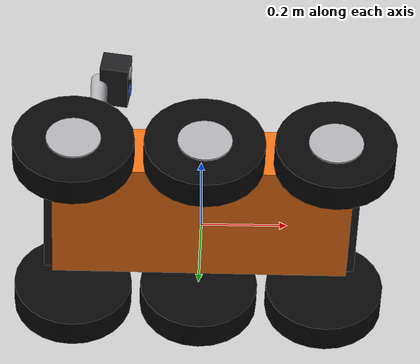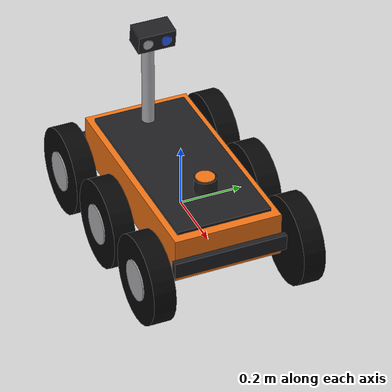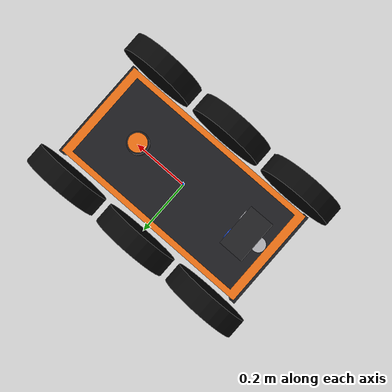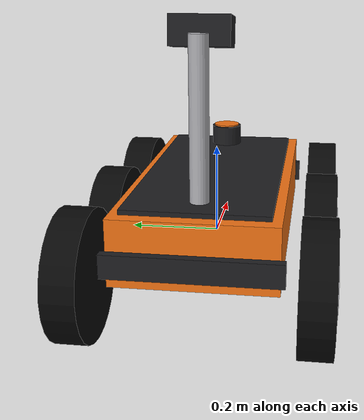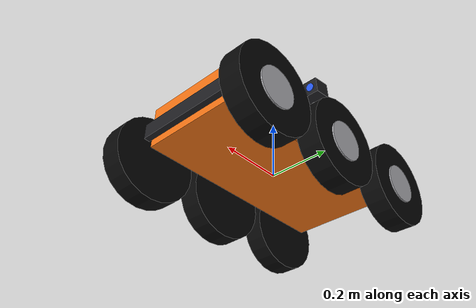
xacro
<?xml version="1.0"?>
<robot name="rover" xmlns:xacro="http://www.ros.org/wiki/xacro">
  <xacro:arg name="ns" default="r1"/>
  <xacro:arg name="sensors" default="true"/>
  <xacro:property name="ns" value="$(arg ns)"/>

  <xacro:property name="wheel_r" value="0.14"/>
  <xacro:property name="wheel_w" value="0.07"/>
  <xacro:property name="track" value="0.48"/>       <!-- wheel centre to wheel centre, across -->
  <xacro:property name="axle_x" value="0.30"/>      <!-- front/rear axles; middle at 0 -->
  <xacro:property name="chassis_l" value="0.70"/>
  <xacro:property name="chassis_w" value="0.34"/>
  <xacro:property name="chassis_h" value="0.14"/>
  <xacro:property name="chassis_z" value="0.07"/>   <!-- centre above the axles: 14 cm clearance -->
  <xacro:property name="mast_x" value="-0.25"/>
  <xacro:property name="head_z" value="0.48"/>      <!-- camera above the axles: 0.62 m above ground -->

  <material name="body"><color rgba="0.95 0.45 0.08 1"/></material>
  <material name="dark"><color rgba="0.12 0.12 0.13 1"/></material>
  <material name="rubber"><color rgba="0.03 0.03 0.03 1"/></material>
  <material name="metal"><color rgba="0.7 0.7 0.72 1"/></material>
  <material name="eye"><color rgba="0.15 0.35 0.95 1"/></material>

  <xacro:macro name="box_inertia" params="m x y z *origin">
    <inertial><xacro:insert_block name="origin"/><mass value="${m}"/>
      <inertia ixx="${m*(y*y+z*z)/12}" iyy="${m*(x*x+z*z)/12}" izz="${m*(x*x+y*y)/12}" ixy="0" ixz="0" iyz="0"/>
    </inertial>
  </xacro:macro>

  <!-- ===== chassis ===== -->
  <link name="base_link">
    <visual><origin xyz="0 0 ${chassis_z}"/><geometry><box size="${chassis_l} ${chassis_w} ${chassis_h}"/></geometry><material name="body"/></visual>
    <visual><origin xyz="0 0 ${chassis_z + chassis_h/2 + 0.005}"/><geometry><box size="${chassis_l - 0.06} ${chassis_w - 0.04} 0.01"/></geometry><material name="dark"/></visual>
    <!-- bumpers -->
    <visual><origin xyz="${chassis_l/2 + 0.01} 0 ${chassis_z - 0.02}"/><geometry><box size="0.02 ${chassis_w + 0.02} 0.05"/></geometry><material name="dark"/></visual>
    <visual><origin xyz="${-chassis_l/2 - 0.01} 0 ${chassis_z - 0.02}"/><geometry><box size="0.02 ${chassis_w + 0.02} 0.05"/></geometry><material name="dark"/></visual>
    <collision><origin xyz="0 0 ${chassis_z}"/><geometry><box size="${chassis_l} ${chassis_w} ${chassis_h}"/></geometry></collision>
    <xacro:box_inertia m="9.0" x="${chassis_l}" y="${chassis_w}" z="${chassis_h}"><origin xyz="0 0 ${chassis_z - 0.02}"/></xacro:box_inertia>
  </link>
  <gazebo reference="base_link"><mu1>0.4</mu1><mu2>0.4</mu2></gazebo>

  <xacro:macro name="wheel" params="name x side">
    <link name="${name}_wheel">
      <visual><origin rpy="${pi/2} 0 0"/><geometry><cylinder radius="${wheel_r}" length="${wheel_w}"/></geometry><material name="rubber"/></visual>
      <visual><origin xyz="0 ${side*(wheel_w/2 + 0.002)} 0" rpy="${pi/2} 0 0"/><geometry><cylinder radius="${wheel_r*0.45}" length="0.004"/></geometry><material name="metal"/></visual>
      <collision><origin rpy="${pi/2} 0 0"/><geometry><cylinder radius="${wheel_r}" length="${wheel_w}"/></geometry></collision>
      <inertial><mass value="0.7"/>
        <inertia ixx="${0.7*(3*wheel_r*wheel_r + wheel_w*wheel_w)/12}" iyy="${0.7*wheel_r*wheel_r/2}"
                 izz="${0.7*(3*wheel_r*wheel_r + wheel_w*wheel_w)/12}" ixy="0" ixz="0" iyz="0"/></inertial>
    </link>
    <joint name="${name}_wheel_joint" type="continuous">
      <parent link="base_link"/><child link="${name}_wheel"/>
      <origin xyz="${x} ${side*track/2} 0"/><axis xyz="0 1 0"/>
      <limit effort="30" velocity="12"/>
    </joint>
    <gazebo reference="${name}_wheel"><mu1>1.5</mu1><mu2>1.5</mu2></gazebo>
  </xacro:macro>
  <xacro:wheel name="lf" x="${axle_x}" side="1"/>
  <xacro:wheel name="lm" x="0" side="1"/>
  <xacro:wheel name="lr" x="${-axle_x}" side="1"/>
  <xacro:wheel name="rf" x="${axle_x}" side="-1"/>
  <xacro:wheel name="rm" x="0" side="-1"/>
  <xacro:wheel name="rr" x="${-axle_x}" side="-1"/>

  <!-- ===== sensors ===== -->
  <link name="lidar_link">
    <visual><geometry><cylinder radius="0.035" length="0.045"/></geometry><material name="dark"/></visual>
    <visual><origin xyz="0 0 0.024"/><geometry><cylinder radius="0.03" length="0.004"/></geometry><material name="body"/></visual>
    <collision><geometry><cylinder radius="0.035" length="0.045"/></geometry></collision>
    <xacro:box_inertia m="0.2" x="0.07" y="0.07" z="0.045"><origin xyz="0 0 0"/></xacro:box_inertia>
  </link>
  <joint name="lidar_joint" type="fixed">
    <parent link="base_link"/><child link="lidar_link"/>
    <origin xyz="0.18 0 ${chassis_z + chassis_h/2 + 0.05}"/>
  </joint>

  <link name="mast_link">
    <visual><origin xyz="0 0 ${(head_z - chassis_z - chassis_h/2)/2}"/>
      <geometry><cylinder radius="0.02" length="${head_z - chassis_z - chassis_h/2}"/></geometry><material name="metal"/></visual>
    <collision><origin xyz="0 0 ${(head_z - chassis_z - chassis_h/2)/2}"/>
      <geometry><cylinder radius="0.02" length="${head_z - chassis_z - chassis_h/2}"/></geometry></collision>
    <xacro:box_inertia m="0.3" x="0.04" y="0.04" z="0.3"><origin xyz="0 0 0.15"/></xacro:box_inertia>
  </link>
  <joint name="mast_joint" type="fixed">
    <parent link="base_link"/><child link="mast_link"/>
    <origin xyz="${mast_x} 0 ${chassis_z + chassis_h/2}"/>
  </joint>

  <!-- Camera head: RGB + thermal behind one window, tilted 8.6 deg down. -->
  <link name="camera_link">
    <visual><geometry><box size="0.07 0.12 0.06"/></geometry><material name="dark"/></visual>
    <visual><origin xyz="0.036 0.03 0" rpy="0 ${pi/2} 0"/><geometry><cylinder radius="0.016" length="0.004"/></geometry><material name="eye"/></visual>
    <visual><origin xyz="0.036 -0.03 0" rpy="0 ${pi/2} 0"/><geometry><cylinder radius="0.016" length="0.004"/></geometry><material name="metal"/></visual>
    <collision><geometry><box size="0.07 0.12 0.06"/></geometry></collision>
    <xacro:box_inertia m="0.3" x="0.07" y="0.12" z="0.06"><origin xyz="0 0 0"/></xacro:box_inertia>
  </link>
  <joint name="camera_joint" type="fixed">
    <parent link="base_link"/><child link="camera_link"/>
    <origin xyz="${mast_x + 0.04} 0 ${head_z}" rpy="0 0.15 0"/>
  </joint>
  <link name="camera_optical_frame"/>
  <joint name="camera_optical_joint" type="fixed">
    <parent link="camera_link"/><child link="camera_optical_frame"/>
    <origin rpy="${-pi/2} 0 ${-pi/2}"/>
  </joint>

  <link name="imu_link"/>
  <joint name="imu_joint" type="fixed">
    <parent link="base_link"/><child link="imu_link"/>
  </joint>

  <xacro:include filename="$(find rescue_description)/urdf/sensors.xacro"/>
  <xacro:if value="$(arg sensors)">
    <xacro:rescue_sensors ns="${ns}"/>
  </xacro:if>

  <!-- ===== drive ===== -->
  <gazebo>
    <plugin filename="ignition-gazebo-diff-drive-system" name="ignition::gazebo::systems::DiffDrive">
      <left_joint>lf_wheel_joint</left_joint>
      <left_joint>lm_wheel_joint</left_joint>
      <left_joint>lr_wheel_joint</left_joint>
      <right_joint>rf_wheel_joint</right_joint>
      <right_joint>rm_wheel_joint</right_joint>
      <right_joint>rr_wheel_joint</right_joint>
      <wheel_separation>${track}</wheel_separation>
      <wheel_radius>${wheel_r}</wheel_radius>
      <topic>/${ns}/cmd_vel</topic>
      <!-- its own (perfect) odometry stays inside Gazebo; the odometry node models a real one -->
      <odom_topic>/${ns}/diff_drive/odom</odom_topic>
      <tf_topic>/${ns}/diff_drive/tf</tf_topic>
      <frame_id>${ns}/dd_odom</frame_id>
      <child_frame_id>${ns}/dd_base</child_frame_id>
      <max_linear_velocity>0.9</max_linear_velocity>
      <min_linear_velocity>-0.5</min_linear_velocity>
      <max_angular_velocity>2.0</max_angular_velocity>
      <min_angular_velocity>-2.0</min_angular_velocity>
      <max_linear_acceleration>1.2</max_linear_acceleration>
      <min_linear_acceleration>-2.0</min_linear_acceleration>
      <max_angular_acceleration>4.0</max_angular_acceleration>
      <min_angular_acceleration>-4.0</min_angular_acceleration>
    </plugin>
  </gazebo>
  <xacro:ground_truth_odom ns="${ns}"/>
</robot>
